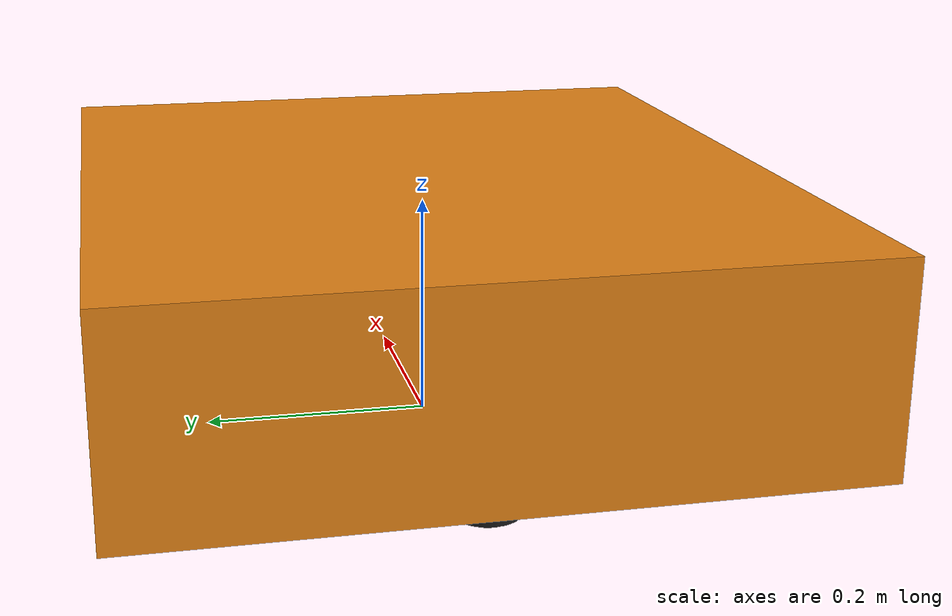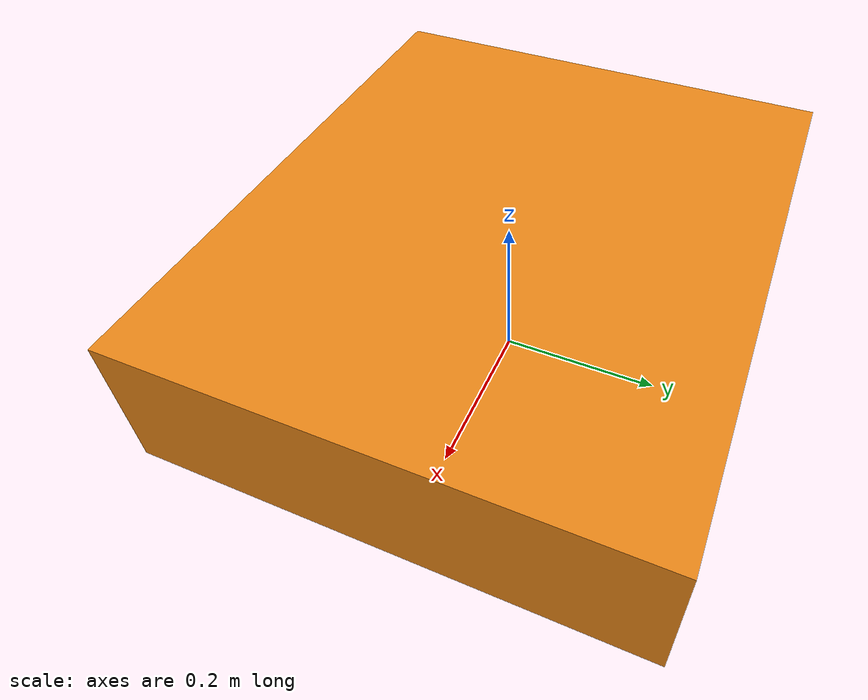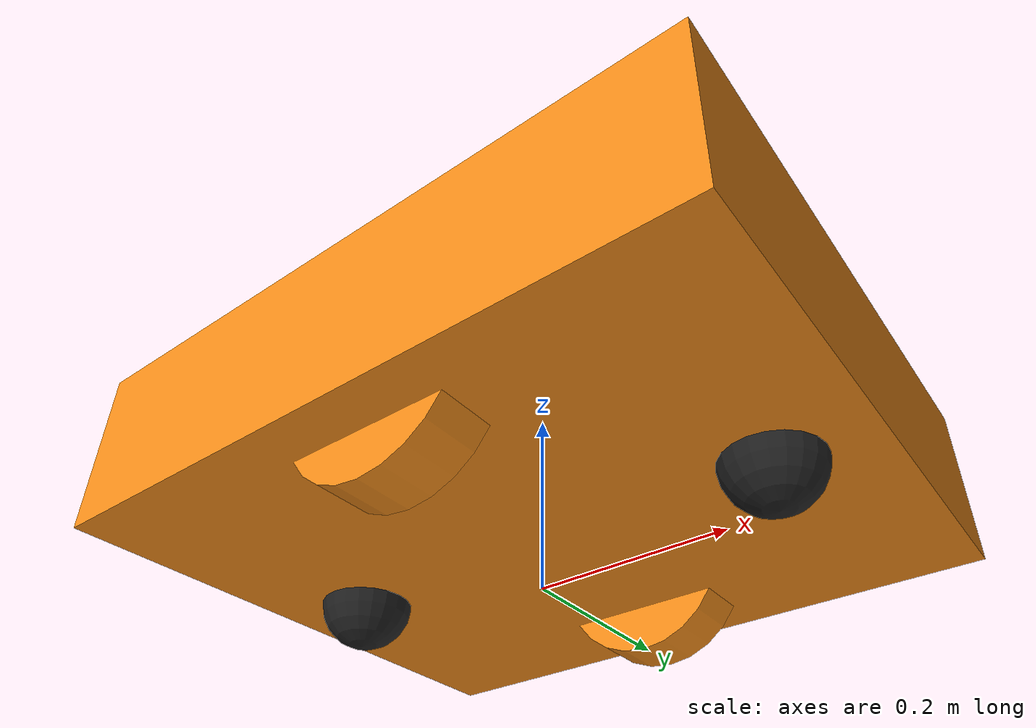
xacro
<?xml version="1.0"?>
<!-- Revolute-Revolute Manipulator -->
<robot name="bobot" xmlns:xacro="http://www.ros.org/wiki/xacro">
  <!-- Constants for robot dimensions -->
  <xacro:property name="PI" value="3.1415926535897931"/>

  <!-- Import Rviz colors -->
  <xacro:include filename="$(find bo_description)/urdf/materials.xacro" />
  <xacro:include filename="$(find bo_description)/urdf/bobot.gazebo"/>

  <!-- Base Link -->
  <link name="base_link">
    <collision>
      <origin xyz="0 0 0.14" rpy="0 0 0"/>
      <geometry>
	    <box size=".7 .6 .18"/>
      </geometry>
    </collision>

    <visual>
      <origin xyz="0 0 0.14" rpy="0 0 0"/>
      <geometry>
	    <box size=".7 .6 .18"/>
      </geometry>
      <material name="orange"/>
    </visual>

    <collision name="collision_front">
      <origin xyz="0.25 0.0 0.05" rpy="0 0 0"/>
      <geometry>
        <sphere radius="0.05"/>
      </geometry>
    </collision>
    <visual name="visual_front">
      <origin xyz="0.25 0.0 0.05" rpy="0 0 0"/>
      <geometry>
        <sphere radius="0.05"/>
      </geometry>
    </visual>

    <collision name="collision_back">
      <origin xyz="-0.25 0.0 0.05" rpy="0 0 0"/>
      <geometry>
        <sphere radius="0.05"/>
      </geometry>
    </collision>
    <visual name="visual_back">
      <origin xyz="-0.25 0.0 0.05" rpy="0 0 0"/>
      <geometry>
        <sphere radius="0.05"/>
      </geometry>
    </visual>

  </link>

  <link name="left_wheel">
    <collision name="collision">
      <origin xyz="0 0.0 0" rpy="0 1.5707 1.5707"/>
      <geometry>
         <cylinder  length="0.06" radius="0.1"/>
      </geometry>
    </collision>
    <visual name="visual">
      <origin xyz="0 0.0 0" rpy="0 1.5707 1.5707"/>
      <geometry>
        <cylinder  length="0.06" radius="0.1"/>
      </geometry>
    </visual>
    <inertial>
      <mass value="1" />
      <origin xyz="0 0.0 0"/>
      <inertia ixx="0.1" ixy="0" ixz="0" iyy="0.1" iyz="0" izz="0.1" />
    </inertial>
  </link>

  <joint type="revolute" name="left_wheel_hinge">
    <origin xyz="0 0.22 0.1" rpy="0 0 0"/>
    <child link="left_wheel">left_wheel</child>
    <parent link="base_link">base_link</parent>
    <axis xyz="0 1 0"/>
    <limit effort="100" velocity="100.0"  lower="-5000" upper="5000" />
  </joint>

  <link name="right_wheel">
    <collision name="collision">
      <origin xyz="0 0.0 0" rpy="0 1.5707 1.5707"/>
      <geometry>
         <cylinder  length="0.06" radius="0.1"/>
      </geometry>
    </collision>
    <visual name="visual">
      <origin xyz="0 0.0 0" rpy="0 1.5707 1.5707"/>
      <geometry>
        <cylinder  length="0.06" radius="0.1"/>
      </geometry>
    </visual>
    <inertial>
      <mass value="1" />
      <origin xyz="0 0.0 0"/>
      <inertia ixx="0.1" ixy="0" ixz="0" iyy="0.1" iyz="0" izz="0.1" />
    </inertial>
  </link>

  <joint type="revolute" name="right_wheel_hinge">
    <origin xyz="0 -0.22 0.1" rpy="0 0 0"/>
    <child link="right_wheel">right_wheel</child>
    <parent link="base_link">base_link</parent>
    <axis xyz="0 1 0"/>
    <limit effort="100" velocity="100.0"  lower="-5000" upper="5000" />
  </joint>

  <transmission name="tran1">
    <type>transmission_interface/SimpleTransmission</type>
    <joint name="left_wheel_hinge">
      <hardwareInterface>VelocityJointInterface</hardwareInterface>
    </joint>
    <actuator name="left_motor">
      <hardwareInterface>VelocityJointInterface</hardwareInterface>
      <mechanicalReduction>1</mechanicalReduction>
    </actuator>
  </transmission>

  <transmission name="tran2">
    <type>transmission_interface/SimpleTransmission</type>
    <joint name="right_wheel_hinge">
      <hardwareInterface>VelocityJointInterface</hardwareInterface>
    </joint>
    <actuator name="right_motor">
      <hardwareInterface>VelocityJointInterface</hardwareInterface>
      <mechanicalReduction>1</mechanicalReduction>
    </actuator>
  </transmission>
</robot>
